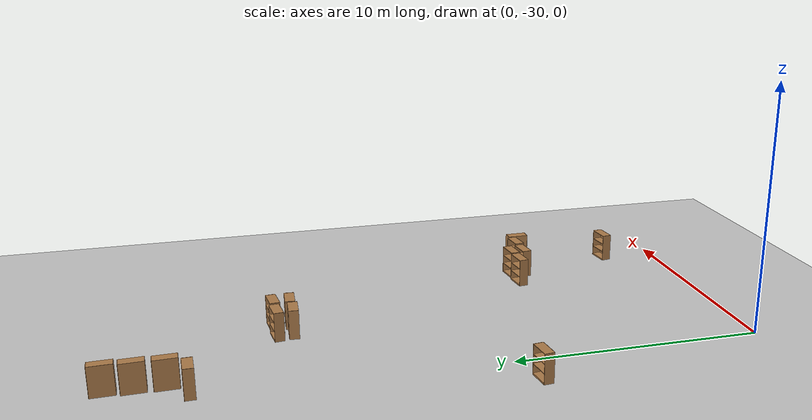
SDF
<sdf version="1.6">
 <world name="default">
  <model name="ground_plane">
   <static>1</static>
   <link name="link">
    <collision name="collision">
     <geometry><plane><normal>0 0 1</normal><size>100 100</size></plane></geometry>
     <surface>
      <contact><collide_bitmask>65535</collide_bitmask></contact>
      <friction><ode><mu>100</mu><mu2>50</mu2></ode></friction>
     </surface>
    </collision>
    <visual name="visual">
     <cast_shadows>0</cast_shadows>
     <geometry><plane><normal>0 0 1</normal><size>100 100</size></plane></geometry>
     <material>
      <script><uri>file://media/materials/scripts/gazebo.material</uri><name>Gazebo/Grey</name></script>
     </material>
    </visual>
   </link>
  </model>
  <model name="bookshelf_clone_2_clone_clone_0_clone_3_clone_0_clone_clone_1_clone_0">
   <static>1</static>
   <link name="link">
    <inertial><mass>1</mass></inertial>
    <collision name="back">
     <pose>0 0.005 0.6 0 -0 0</pose>
     <geometry><box><size>0.9 0.01 1.2</size></box></geometry>
    </collision>
    <visual name="visual1">
     <pose>0 0.005 0.6 0 -0 0</pose>
     <geometry><box><size>0.9 0.01 1.2</size></box></geometry>
     <material>
      <script><uri>file://media/materials/scripts/gazebo.material</uri><name>Gazebo/Wood</name></script>
     </material>
    </visual>
    <collision name="left_side">
     <pose>0.45 -0.195 0.6 0 -0 0</pose>
     <geometry><box><size>0.02 0.4 1.2</size></box></geometry>
    </collision>
    <visual name="visual2">
     <pose>0.45 -0.195 0.6 0 -0 0</pose>
     <geometry><box><size>0.02 0.4 1.2</size></box></geometry>
     <material>
      <script><uri>file://media/materials/scripts/gazebo.material</uri><name>Gazebo/Wood</name></script>
     </material>
    </visual>
    <collision name="right_side">
     <pose>-0.45 -0.195 0.6 0 -0 0</pose>
     <geometry><box><size>0.02 0.4 1.2</size></box></geometry>
    </collision>
    <visual name="visual3">
     <pose>-0.45 -0.195 0.6 0 -0 0</pose>
     <geometry><box><size>0.02 0.4 1.2</size></box></geometry>
     <material>
      <script><uri>file://media/materials/scripts/gazebo.material</uri><name>Gazebo/Wood</name></script>
     </material>
    </visual>
    <collision name="bottom">
     <pose>0 -0.195 0.03 0 -0 0</pose>
     <geometry><box><size>0.88 0.4 0.06</size></box></geometry>
    </collision>
    <visual name="visual4">
     <pose>0 -0.195 0.03 0 -0 0</pose>
     <geometry><box><size>0.88 0.4 0.06</size></box></geometry>
     <material>
      <script><uri>file://media/materials/scripts/gazebo.material</uri><name>Gazebo/Wood</name></script>
     </material>
    </visual>
    <collision name="top">
     <pose>0 -0.195 1.19 0 -0 0</pose>
     <geometry><box><size>0.88 0.4 0.02</size></box></geometry>
    </collision>
    <visual name="visual5">
     <pose>0 -0.195 1.19 0 -0 0</pose>
     <geometry><box><size>0.88 0.4 0.02</size></box></geometry>
     <material>
      <script><uri>file://media/materials/scripts/gazebo.material</uri><name>Gazebo/Wood</name></script>
     </material>
    </visual>
    <collision name="low_shelf">
     <pose>0 -0.195 0.43 0 -0 0</pose>
     <geometry><box><size>0.88 0.4 0.02</size></box></geometry>
    </collision>
    <visual name="visual6">
     <pose>0 -0.195 0.43 0 -0 0</pose>
     <geometry><box><size>0.88 0.4 0.02</size></box></geometry>
     <material>
      <script><uri>file://media/materials/scripts/gazebo.material</uri><name>Gazebo/Wood</name></script>
     </material>
    </visual>
    <collision name="high_shelf">
     <pose>0 -0.195 0.8 0 -0 0</pose>
     <geometry><box><size>0.88 0.4 0.02</size></box></geometry>
    </collision>
    <visual name="visual7">
     <pose>0 -0.195 0.8 0 -0 0</pose>
     <geometry><box><size>0.88 0.4 0.02</size></box></geometry>
     <material>
      <script><uri>file://media/materials/scripts/gazebo.material</uri><name>Gazebo/Wood</name></script>
     </material>
    </visual>
   </link>
   <pose>5.47575 -11.9131 0 0 0 -3.02711</pose>
  </model>
  <model name="bookshelf_clone_2_clone_clone_0_clone_3_clone_0_clone_clone_1_clone_1">
   <static>1</static>
   <link name="link">
    <inertial><mass>1</mass></inertial>
    <collision name="back">
     <pose>0 0.005 0.6 0 -0 0</pose>
     <geometry><box><size>0.9 0.01 1.2</size></box></geometry>
    </collision>
    <visual name="visual1">
     <pose>0 0.005 0.6 0 -0 0</pose>
     <geometry><box><size>0.9 0.01 1.2</size></box></geometry>
     <material>
      <script><uri>file://media/materials/scripts/gazebo.material</uri><name>Gazebo/Wood</name></script>
     </material>
    </visual>
    <collision name="left_side">
     <pose>0.45 -0.195 0.6 0 -0 0</pose>
     <geometry><box><size>0.02 0.4 1.2</size></box></geometry>
    </collision>
    <visual name="visual2">
     <pose>0.45 -0.195 0.6 0 -0 0</pose>
     <geometry><box><size>0.02 0.4 1.2</size></box></geometry>
     <material>
      <script><uri>file://media/materials/scripts/gazebo.material</uri><name>Gazebo/Wood</name></script>
     </material>
    </visual>
    <collision name="right_side">
     <pose>-0.45 -0.195 0.6 0 -0 0</pose>
     <geometry><box><size>0.02 0.4 1.2</size></box></geometry>
    </collision>
    <visual name="visual3">
     <pose>-0.45 -0.195 0.6 0 -0 0</pose>
     <geometry><box><size>0.02 0.4 1.2</size></box></geometry>
     <material>
      <script><uri>file://media/materials/scripts/gazebo.material</uri><name>Gazebo/Wood</name></script>
     </material>
    </visual>
    <collision name="bottom">
     <pose>0 -0.195 0.03 0 -0 0</pose>
     <geometry><box><size>0.88 0.4 0.06</size></box></geometry>
    </collision>
    <visual name="visual4">
     <pose>0 -0.195 0.03 0 -0 0</pose>
     <geometry><box><size>0.88 0.4 0.06</size></box></geometry>
     <material>
      <script><uri>file://media/materials/scripts/gazebo.material</uri><name>Gazebo/Wood</name></script>
     </material>
    </visual>
    <collision name="top">
     <pose>0 -0.195 1.19 0 -0 0</pose>
     <geometry><box><size>0.88 0.4 0.02</size></box></geometry>
    </collision>
    <visual name="visual5">
     <pose>0 -0.195 1.19 0 -0 0</pose>
     <geometry><box><size>0.88 0.4 0.02</size></box></geometry>
     <material>
      <script><uri>file://media/materials/scripts/gazebo.material</uri><name>Gazebo/Wood</name></script>
     </material>
    </visual>
    <collision name="low_shelf">
     <pose>0 -0.195 0.43 0 -0 0</pose>
     <geometry><box><size>0.88 0.4 0.02</size></box></geometry>
    </collision>
    <visual name="visual6">
     <pose>0 -0.195 0.43 0 -0 0</pose>
     <geometry><box><size>0.88 0.4 0.02</size></box></geometry>
     <material>
      <script><uri>file://media/materials/scripts/gazebo.material</uri><name>Gazebo/Wood</name></script>
     </material>
    </visual>
    <collision name="high_shelf">
     <pose>0 -0.195 0.8 0 -0 0</pose>
     <geometry><box><size>0.88 0.4 0.02</size></box></geometry>
    </collision>
    <visual name="visual7">
     <pose>0 -0.195 0.8 0 -0 0</pose>
     <geometry><box><size>0.88 0.4 0.02</size></box></geometry>
     <material>
      <script><uri>file://media/materials/scripts/gazebo.material</uri><name>Gazebo/Wood</name></script>
     </material>
    </visual>
   </link>
   <pose>4.44861 -11.9549 0 0 0 -3.02711</pose>
  </model>
  <model name="bookshelf_clone_2_clone_clone_0_clone_3_clone_0_clone_clone_1_clone_1_clone_clone">
   <static>1</static>
   <link name="link">
    <inertial><mass>1</mass></inertial>
    <collision name="back">
     <pose>0 0.005 0.6 0 -0 0</pose>
     <geometry><box><size>0.9 0.01 1.2</size></box></geometry>
    </collision>
    <visual name="visual1">
     <pose>0 0.005 0.6 0 -0 0</pose>
     <geometry><box><size>0.9 0.01 1.2</size></box></geometry>
     <material>
      <script><uri>file://media/materials/scripts/gazebo.material</uri><name>Gazebo/Wood</name></script>
     </material>
    </visual>
    <collision name="left_side">
     <pose>0.45 -0.195 0.6 0 -0 0</pose>
     <geometry><box><size>0.02 0.4 1.2</size></box></geometry>
    </collision>
    <visual name="visual2">
     <pose>0.45 -0.195 0.6 0 -0 0</pose>
     <geometry><box><size>0.02 0.4 1.2</size></box></geometry>
     <material>
      <script><uri>file://media/materials/scripts/gazebo.material</uri><name>Gazebo/Wood</name></script>
     </material>
    </visual>
    <collision name="right_side">
     <pose>-0.45 -0.195 0.6 0 -0 0</pose>
     <geometry><box><size>0.02 0.4 1.2</size></box></geometry>
    </collision>
    <visual name="visual3">
     <pose>-0.45 -0.195 0.6 0 -0 0</pose>
     <geometry><box><size>0.02 0.4 1.2</size></box></geometry>
     <material>
      <script><uri>file://media/materials/scripts/gazebo.material</uri><name>Gazebo/Wood</name></script>
     </material>
    </visual>
    <collision name="bottom">
     <pose>0 -0.195 0.03 0 -0 0</pose>
     <geometry><box><size>0.88 0.4 0.06</size></box></geometry>
    </collision>
    <visual name="visual4">
     <pose>0 -0.195 0.03 0 -0 0</pose>
     <geometry><box><size>0.88 0.4 0.06</size></box></geometry>
     <material>
      <script><uri>file://media/materials/scripts/gazebo.material</uri><name>Gazebo/Wood</name></script>
     </material>
    </visual>
    <collision name="top">
     <pose>0 -0.195 1.19 0 -0 0</pose>
     <geometry><box><size>0.88 0.4 0.02</size></box></geometry>
    </collision>
    <visual name="visual5">
     <pose>0 -0.195 1.19 0 -0 0</pose>
     <geometry><box><size>0.88 0.4 0.02</size></box></geometry>
     <material>
      <script><uri>file://media/materials/scripts/gazebo.material</uri><name>Gazebo/Wood</name></script>
     </material>
    </visual>
    <collision name="low_shelf">
     <pose>0 -0.195 0.43 0 -0 0</pose>
     <geometry><box><size>0.88 0.4 0.02</size></box></geometry>
    </collision>
    <visual name="visual6">
     <pose>0 -0.195 0.43 0 -0 0</pose>
     <geometry><box><size>0.88 0.4 0.02</size></box></geometry>
     <material>
      <script><uri>file://media/materials/scripts/gazebo.material</uri><name>Gazebo/Wood</name></script>
     </material>
    </visual>
    <collision name="high_shelf">
     <pose>0 -0.195 0.8 0 -0 0</pose>
     <geometry><box><size>0.88 0.4 0.02</size></box></geometry>
    </collision>
    <visual name="visual7">
     <pose>0 -0.195 0.8 0 -0 0</pose>
     <geometry><box><size>0.88 0.4 0.02</size></box></geometry>
     <material>
      <script><uri>file://media/materials/scripts/gazebo.material</uri><name>Gazebo/Wood</name></script>
     </material>
    </visual>
   </link>
   <pose>0.495356 -8.16656 0 0 -0 0.032682</pose>
  </model>
  <model name="bookshelf_clone_2_clone_clone_0_clone_3_clone_0_clone_1_clone_clone_0_clone_1_clone_1_clone_clone_0_clone_clone_clone">
   <static>1</static>
   <link name="link">
    <inertial><mass>1</mass></inertial>
    <collision name="back">
     <pose>0 0.005 0.6 0 -0 0</pose>
     <geometry><box><size>0.9 0.01 1.2</size></box></geometry>
    </collision>
    <visual name="visual1">
     <pose>0 0.005 0.6 0 -0 0</pose>
     <geometry><box><size>0.9 0.01 1.2</size></box></geometry>
     <material>
      <script><uri>file://media/materials/scripts/gazebo.material</uri><name>Gazebo/Wood</name></script>
     </material>
    </visual>
    <collision name="left_side">
     <pose>0.45 -0.195 0.6 0 -0 0</pose>
     <geometry><box><size>0.02 0.4 1.2</size></box></geometry>
    </collision>
    <visual name="visual2">
     <pose>0.45 -0.195 0.6 0 -0 0</pose>
     <geometry><box><size>0.02 0.4 1.2</size></box></geometry>
     <material>
      <script><uri>file://media/materials/scripts/gazebo.material</uri><name>Gazebo/Wood</name></script>
     </material>
    </visual>
    <collision name="right_side">
     <pose>-0.45 -0.195 0.6 0 -0 0</pose>
     <geometry><box><size>0.02 0.4 1.2</size></box></geometry>
    </collision>
    <visual name="visual3">
     <pose>-0.45 -0.195 0.6 0 -0 0</pose>
     <geometry><box><size>0.02 0.4 1.2</size></box></geometry>
     <material>
      <script><uri>file://media/materials/scripts/gazebo.material</uri><name>Gazebo/Wood</name></script>
     </material>
    </visual>
    <collision name="bottom">
     <pose>0 -0.195 0.03 0 -0 0</pose>
     <geometry><box><size>0.88 0.4 0.06</size></box></geometry>
    </collision>
    <visual name="visual4">
     <pose>0 -0.195 0.03 0 -0 0</pose>
     <geometry><box><size>0.88 0.4 0.06</size></box></geometry>
     <material>
      <script><uri>file://media/materials/scripts/gazebo.material</uri><name>Gazebo/Wood</name></script>
     </material>
    </visual>
    <collision name="top">
     <pose>0 -0.195 1.19 0 -0 0</pose>
     <geometry><box><size>0.88 0.4 0.02</size></box></geometry>
    </collision>
    <visual name="visual5">
     <pose>0 -0.195 1.19 0 -0 0</pose>
     <geometry><box><size>0.88 0.4 0.02</size></box></geometry>
     <material>
      <script><uri>file://media/materials/scripts/gazebo.material</uri><name>Gazebo/Wood</name></script>
     </material>
    </visual>
    <collision name="low_shelf">
     <pose>0 -0.195 0.43 0 -0 0</pose>
     <geometry><box><size>0.88 0.4 0.02</size></box></geometry>
    </collision>
    <visual name="visual6">
     <pose>0 -0.195 0.43 0 -0 0</pose>
     <geometry><box><size>0.88 0.4 0.02</size></box></geometry>
     <material>
      <script><uri>file://media/materials/scripts/gazebo.material</uri><name>Gazebo/Wood</name></script>
     </material>
    </visual>
    <collision name="high_shelf">
     <pose>0 -0.195 0.8 0 -0 0</pose>
     <geometry><box><size>0.88 0.4 0.02</size></box></geometry>
    </collision>
    <visual name="visual7">
     <pose>0 -0.195 0.8 0 -0 0</pose>
     <geometry><box><size>0.88 0.4 0.02</size></box></geometry>
     <material>
      <script><uri>file://media/materials/scripts/gazebo.material</uri><name>Gazebo/Wood</name></script>
     </material>
    </visual>
   </link>
   <pose>1.01754 -6.4966 0 0 -0 1.61157</pose>
  </model>
  <model name="bookshelf_clone_2_clone_clone_0_clone_3_clone_0_clone_1_clone_clone_0_clone_1_clone_1_clone_clone_0_clone_clone_clone_0">
   <static>1</static>
   <link name="link">
    <inertial><mass>1</mass></inertial>
    <collision name="back">
     <pose>0 0.005 0.6 0 -0 0</pose>
     <geometry><box><size>0.9 0.01 1.2</size></box></geometry>
    </collision>
    <visual name="visual1">
     <pose>0 0.005 0.6 0 -0 0</pose>
     <geometry><box><size>0.9 0.01 1.2</size></box></geometry>
     <material>
      <script><uri>file://media/materials/scripts/gazebo.material</uri><name>Gazebo/Wood</name></script>
     </material>
    </visual>
    <collision name="left_side">
     <pose>0.45 -0.195 0.6 0 -0 0</pose>
     <geometry><box><size>0.02 0.4 1.2</size></box></geometry>
    </collision>
    <visual name="visual2">
     <pose>0.45 -0.195 0.6 0 -0 0</pose>
     <geometry><box><size>0.02 0.4 1.2</size></box></geometry>
     <material>
      <script><uri>file://media/materials/scripts/gazebo.material</uri><name>Gazebo/Wood</name></script>
     </material>
    </visual>
    <collision name="right_side">
     <pose>-0.45 -0.195 0.6 0 -0 0</pose>
     <geometry><box><size>0.02 0.4 1.2</size></box></geometry>
    </collision>
    <visual name="visual3">
     <pose>-0.45 -0.195 0.6 0 -0 0</pose>
     <geometry><box><size>0.02 0.4 1.2</size></box></geometry>
     <material>
      <script><uri>file://media/materials/scripts/gazebo.material</uri><name>Gazebo/Wood</name></script>
     </material>
    </visual>
    <collision name="bottom">
     <pose>0 -0.195 0.03 0 -0 0</pose>
     <geometry><box><size>0.88 0.4 0.06</size></box></geometry>
    </collision>
    <visual name="visual4">
     <pose>0 -0.195 0.03 0 -0 0</pose>
     <geometry><box><size>0.88 0.4 0.06</size></box></geometry>
     <material>
      <script><uri>file://media/materials/scripts/gazebo.material</uri><name>Gazebo/Wood</name></script>
     </material>
    </visual>
    <collision name="top">
     <pose>0 -0.195 1.19 0 -0 0</pose>
     <geometry><box><size>0.88 0.4 0.02</size></box></geometry>
    </collision>
    <visual name="visual5">
     <pose>0 -0.195 1.19 0 -0 0</pose>
     <geometry><box><size>0.88 0.4 0.02</size></box></geometry>
     <material>
      <script><uri>file://media/materials/scripts/gazebo.material</uri><name>Gazebo/Wood</name></script>
     </material>
    </visual>
    <collision name="low_shelf">
     <pose>0 -0.195 0.43 0 -0 0</pose>
     <geometry><box><size>0.88 0.4 0.02</size></box></geometry>
    </collision>
    <visual name="visual6">
     <pose>0 -0.195 0.43 0 -0 0</pose>
     <geometry><box><size>0.88 0.4 0.02</size></box></geometry>
     <material>
      <script><uri>file://media/materials/scripts/gazebo.material</uri><name>Gazebo/Wood</name></script>
     </material>
    </visual>
    <collision name="high_shelf">
     <pose>0 -0.195 0.8 0 -0 0</pose>
     <geometry><box><size>0.88 0.4 0.02</size></box></geometry>
    </collision>
    <visual name="visual7">
     <pose>0 -0.195 0.8 0 -0 0</pose>
     <geometry><box><size>0.88 0.4 0.02</size></box></geometry>
     <material>
      <script><uri>file://media/materials/scripts/gazebo.material</uri><name>Gazebo/Wood</name></script>
     </material>
    </visual>
   </link>
   <pose>1.00167 -7.61544 0 0 -0 1.61157</pose>
  </model>
  <model name="bookshelf_clone_2_clone_clone_0_clone_3_clone_0_clone_1_clone_clone_0_clone_1_clone_1_clone_clone_0_clone_clone_clone_clone">
   <static>1</static>
   <link name="link">
    <inertial><mass>1</mass></inertial>
    <collision name="back">
     <pose>0 0.005 0.6 0 -0 0</pose>
     <geometry><box><size>0.9 0.01 1.2</size></box></geometry>
    </collision>
    <visual name="visual1">
     <pose>0 0.005 0.6 0 -0 0</pose>
     <geometry><box><size>0.9 0.01 1.2</size></box></geometry>
     <material>
      <script><uri>file://media/materials/scripts/gazebo.material</uri><name>Gazebo/Wood</name></script>
     </material>
    </visual>
    <collision name="left_side">
     <pose>0.45 -0.195 0.6 0 -0 0</pose>
     <geometry><box><size>0.02 0.4 1.2</size></box></geometry>
    </collision>
    <visual name="visual2">
     <pose>0.45 -0.195 0.6 0 -0 0</pose>
     <geometry><box><size>0.02 0.4 1.2</size></box></geometry>
     <material>
      <script><uri>file://media/materials/scripts/gazebo.material</uri><name>Gazebo/Wood</name></script>
     </material>
    </visual>
    <collision name="right_side">
     <pose>-0.45 -0.195 0.6 0 -0 0</pose>
     <geometry><box><size>0.02 0.4 1.2</size></box></geometry>
    </collision>
    <visual name="visual3">
     <pose>-0.45 -0.195 0.6 0 -0 0</pose>
     <geometry><box><size>0.02 0.4 1.2</size></box></geometry>
     <material>
      <script><uri>file://media/materials/scripts/gazebo.material</uri><name>Gazebo/Wood</name></script>
     </material>
    </visual>
    <collision name="bottom">
     <pose>0 -0.195 0.03 0 -0 0</pose>
     <geometry><box><size>0.88 0.4 0.06</size></box></geometry>
    </collision>
    <visual name="visual4">
     <pose>0 -0.195 0.03 0 -0 0</pose>
     <geometry><box><size>0.88 0.4 0.06</size></box></geometry>
     <material>
      <script><uri>file://media/materials/scripts/gazebo.material</uri><name>Gazebo/Wood</name></script>
     </material>
    </visual>
    <collision name="top">
     <pose>0 -0.195 1.19 0 -0 0</pose>
     <geometry><box><size>0.88 0.4 0.02</size></box></geometry>
    </collision>
    <visual name="visual5">
     <pose>0 -0.195 1.19 0 -0 0</pose>
     <geometry><box><size>0.88 0.4 0.02</size></box></geometry>
     <material>
      <script><uri>file://media/materials/scripts/gazebo.material</uri><name>Gazebo/Wood</name></script>
     </material>
    </visual>
    <collision name="low_shelf">
     <pose>0 -0.195 0.43 0 -0 0</pose>
     <geometry><box><size>0.88 0.4 0.02</size></box></geometry>
    </collision>
    <visual name="visual6">
     <pose>0 -0.195 0.43 0 -0 0</pose>
     <geometry><box><size>0.88 0.4 0.02</size></box></geometry>
     <material>
      <script><uri>file://media/materials/scripts/gazebo.material</uri><name>Gazebo/Wood</name></script>
     </material>
    </visual>
    <collision name="high_shelf">
     <pose>0 -0.195 0.8 0 -0 0</pose>
     <geometry><box><size>0.88 0.4 0.02</size></box></geometry>
    </collision>
    <visual name="visual7">
     <pose>0 -0.195 0.8 0 -0 0</pose>
     <geometry><box><size>0.88 0.4 0.02</size></box></geometry>
     <material>
      <script><uri>file://media/materials/scripts/gazebo.material</uri><name>Gazebo/Wood</name></script>
     </material>
    </visual>
   </link>
   <pose>1.07441 -5.45897 0 0 -0 1.61157</pose>
  </model>
  <model name="bookshelf_clone_2_clone_clone_0_clone_3_clone_0_clone_clone_1_clone_3_clone_clone_0">
   <static>1</static>
   <link name="link">
    <inertial><mass>1</mass></inertial>
    <collision name="back">
     <pose>0 0.005 0.6 0 -0 0</pose>
     <geometry><box><size>0.9 0.01 1.2</size></box></geometry>
    </collision>
    <visual name="visual1">
     <pose>0 0.005 0.6 0 -0 0</pose>
     <geometry><box><size>0.9 0.01 1.2</size></box></geometry>
     <material>
      <script><uri>file://media/materials/scripts/gazebo.material</uri><name>Gazebo/Wood</name></script>
     </material>
    </visual>
    <collision name="left_side">
     <pose>0.45 -0.195 0.6 0 -0 0</pose>
     <geometry><box><size>0.02 0.4 1.2</size></box></geometry>
    </collision>
    <visual name="visual2">
     <pose>0.45 -0.195 0.6 0 -0 0</pose>
     <geometry><box><size>0.02 0.4 1.2</size></box></geometry>
     <material>
      <script><uri>file://media/materials/scripts/gazebo.material</uri><name>Gazebo/Wood</name></script>
     </material>
    </visual>
    <collision name="right_side">
     <pose>-0.45 -0.195 0.6 0 -0 0</pose>
     <geometry><box><size>0.02 0.4 1.2</size></box></geometry>
    </collision>
    <visual name="visual3">
     <pose>-0.45 -0.195 0.6 0 -0 0</pose>
     <geometry><box><size>0.02 0.4 1.2</size></box></geometry>
     <material>
      <script><uri>file://media/materials/scripts/gazebo.material</uri><name>Gazebo/Wood</name></script>
     </material>
    </visual>
    <collision name="bottom">
     <pose>0 -0.195 0.03 0 -0 0</pose>
     <geometry><box><size>0.88 0.4 0.06</size></box></geometry>
    </collision>
    <visual name="visual4">
     <pose>0 -0.195 0.03 0 -0 0</pose>
     <geometry><box><size>0.88 0.4 0.06</size></box></geometry>
     <material>
      <script><uri>file://media/materials/scripts/gazebo.material</uri><name>Gazebo/Wood</name></script>
     </material>
    </visual>
    <collision name="top">
     <pose>0 -0.195 1.19 0 -0 0</pose>
     <geometry><box><size>0.88 0.4 0.02</size></box></geometry>
    </collision>
    <visual name="visual5">
     <pose>0 -0.195 1.19 0 -0 0</pose>
     <geometry><box><size>0.88 0.4 0.02</size></box></geometry>
     <material>
      <script><uri>file://media/materials/scripts/gazebo.material</uri><name>Gazebo/Wood</name></script>
     </material>
    </visual>
    <collision name="low_shelf">
     <pose>0 -0.195 0.43 0 -0 0</pose>
     <geometry><box><size>0.88 0.4 0.02</size></box></geometry>
    </collision>
    <visual name="visual6">
     <pose>0 -0.195 0.43 0 -0 0</pose>
     <geometry><box><size>0.88 0.4 0.02</size></box></geometry>
     <material>
      <script><uri>file://media/materials/scripts/gazebo.material</uri><name>Gazebo/Wood</name></script>
     </material>
    </visual>
    <collision name="high_shelf">
     <pose>0 -0.195 0.8 0 -0 0</pose>
     <geometry><box><size>0.88 0.4 0.02</size></box></geometry>
    </collision>
    <visual name="visual7">
     <pose>0 -0.195 0.8 0 -0 0</pose>
     <geometry><box><size>0.88 0.4 0.02</size></box></geometry>
     <material>
      <script><uri>file://media/materials/scripts/gazebo.material</uri><name>Gazebo/Wood</name></script>
     </material>
    </visual>
   </link>
   <pose>9.60047 -27.7951 0 0 0 -3.02711</pose>
  </model>
  <model name="bookshelf_clone_2_clone_clone_0_clone_3_clone_0_clone_clone_1_clone_1_clone">
   <static>1</static>
   <link name="link">
    <inertial><mass>1</mass></inertial>
    <collision name="back">
     <pose>0 0.005 0.6 0 -0 0</pose>
     <geometry><box><size>0.9 0.01 1.2</size></box></geometry>
    </collision>
    <visual name="visual1">
     <pose>0 0.005 0.6 0 -0 0</pose>
     <geometry><box><size>0.9 0.01 1.2</size></box></geometry>
     <material>
      <script><uri>file://media/materials/scripts/gazebo.material</uri><name>Gazebo/Wood</name></script>
     </material>
    </visual>
    <collision name="left_side">
     <pose>0.45 -0.195 0.6 0 -0 0</pose>
     <geometry><box><size>0.02 0.4 1.2</size></box></geometry>
    </collision>
    <visual name="visual2">
     <pose>0.45 -0.195 0.6 0 -0 0</pose>
     <geometry><box><size>0.02 0.4 1.2</size></box></geometry>
     <material>
      <script><uri>file://media/materials/scripts/gazebo.material</uri><name>Gazebo/Wood</name></script>
     </material>
    </visual>
    <collision name="right_side">
     <pose>-0.45 -0.195 0.6 0 -0 0</pose>
     <geometry><box><size>0.02 0.4 1.2</size></box></geometry>
    </collision>
    <visual name="visual3">
     <pose>-0.45 -0.195 0.6 0 -0 0</pose>
     <geometry><box><size>0.02 0.4 1.2</size></box></geometry>
     <material>
      <script><uri>file://media/materials/scripts/gazebo.material</uri><name>Gazebo/Wood</name></script>
     </material>
    </visual>
    <collision name="bottom">
     <pose>0 -0.195 0.03 0 -0 0</pose>
     <geometry><box><size>0.88 0.4 0.06</size></box></geometry>
    </collision>
    <visual name="visual4">
     <pose>0 -0.195 0.03 0 -0 0</pose>
     <geometry><box><size>0.88 0.4 0.06</size></box></geometry>
     <material>
      <script><uri>file://media/materials/scripts/gazebo.material</uri><name>Gazebo/Wood</name></script>
     </material>
    </visual>
    <collision name="top">
     <pose>0 -0.195 1.19 0 -0 0</pose>
     <geometry><box><size>0.88 0.4 0.02</size></box></geometry>
    </collision>
    <visual name="visual5">
     <pose>0 -0.195 1.19 0 -0 0</pose>
     <geometry><box><size>0.88 0.4 0.02</size></box></geometry>
     <material>
      <script><uri>file://media/materials/scripts/gazebo.material</uri><name>Gazebo/Wood</name></script>
     </material>
    </visual>
    <collision name="low_shelf">
     <pose>0 -0.195 0.43 0 -0 0</pose>
     <geometry><box><size>0.88 0.4 0.02</size></box></geometry>
    </collision>
    <visual name="visual6">
     <pose>0 -0.195 0.43 0 -0 0</pose>
     <geometry><box><size>0.88 0.4 0.02</size></box></geometry>
     <material>
      <script><uri>file://media/materials/scripts/gazebo.material</uri><name>Gazebo/Wood</name></script>
     </material>
    </visual>
    <collision name="high_shelf">
     <pose>0 -0.195 0.8 0 -0 0</pose>
     <geometry><box><size>0.88 0.4 0.02</size></box></geometry>
    </collision>
    <visual name="visual7">
     <pose>0 -0.195 0.8 0 -0 0</pose>
     <geometry><box><size>0.88 0.4 0.02</size></box></geometry>
     <material>
      <script><uri>file://media/materials/scripts/gazebo.material</uri><name>Gazebo/Wood</name></script>
     </material>
    </visual>
   </link>
   <pose>-1.49522 -20.763 0 0 0 -3.02711</pose>
  </model>
  <model name="bookshelf_clone_2_clone_clone_0_clone_3_clone_0_clone_1_clone_clone_clone_clone_clone_clone">
   <static>1</static>
   <link name="link">
    <inertial><mass>1</mass></inertial>
    <collision name="back">
     <pose>0 0.005 0.6 0 -0 0</pose>
     <geometry><box><size>0.9 0.01 1.2</size></box></geometry>
    </collision>
    <visual name="visual1">
     <pose>0 0.005 0.6 0 -0 0</pose>
     <geometry><box><size>0.9 0.01 1.2</size></box></geometry>
     <material>
      <script><uri>file://media/materials/scripts/gazebo.material</uri><name>Gazebo/Wood</name></script>
     </material>
    </visual>
    <collision name="left_side">
     <pose>0.45 -0.195 0.6 0 -0 0</pose>
     <geometry><box><size>0.02 0.4 1.2</size></box></geometry>
    </collision>
    <visual name="visual2">
     <pose>0.45 -0.195 0.6 0 -0 0</pose>
     <geometry><box><size>0.02 0.4 1.2</size></box></geometry>
     <material>
      <script><uri>file://media/materials/scripts/gazebo.material</uri><name>Gazebo/Wood</name></script>
     </material>
    </visual>
    <collision name="right_side">
     <pose>-0.45 -0.195 0.6 0 -0 0</pose>
     <geometry><box><size>0.02 0.4 1.2</size></box></geometry>
    </collision>
    <visual name="visual3">
     <pose>-0.45 -0.195 0.6 0 -0 0</pose>
     <geometry><box><size>0.02 0.4 1.2</size></box></geometry>
     <material>
      <script><uri>file://media/materials/scripts/gazebo.material</uri><name>Gazebo/Wood</name></script>
     </material>
    </visual>
    <collision name="bottom">
     <pose>0 -0.195 0.03 0 -0 0</pose>
     <geometry><box><size>0.88 0.4 0.06</size></box></geometry>
    </collision>
    <visual name="visual4">
     <pose>0 -0.195 0.03 0 -0 0</pose>
     <geometry><box><size>0.88 0.4 0.06</size></box></geometry>
     <material>
      <script><uri>file://media/materials/scripts/gazebo.material</uri><name>Gazebo/Wood</name></script>
     </material>
    </visual>
    <collision name="top">
     <pose>0 -0.195 1.19 0 -0 0</pose>
     <geometry><box><size>0.88 0.4 0.02</size></box></geometry>
    </collision>
    <visual name="visual5">
     <pose>0 -0.195 1.19 0 -0 0</pose>
     <geometry><box><size>0.88 0.4 0.02</size></box></geometry>
     <material>
      <script><uri>file://media/materials/scripts/gazebo.material</uri><name>Gazebo/Wood</name></script>
     </material>
    </visual>
    <collision name="low_shelf">
     <pose>0 -0.195 0.43 0 -0 0</pose>
     <geometry><box><size>0.88 0.4 0.02</size></box></geometry>
    </collision>
    <visual name="visual6">
     <pose>0 -0.195 0.43 0 -0 0</pose>
     <geometry><box><size>0.88 0.4 0.02</size></box></geometry>
     <material>
      <script><uri>file://media/materials/scripts/gazebo.material</uri><name>Gazebo/Wood</name></script>
     </material>
    </visual>
    <collision name="high_shelf">
     <pose>0 -0.195 0.8 0 -0 0</pose>
     <geometry><box><size>0.88 0.4 0.02</size></box></geometry>
    </collision>
    <visual name="visual7">
     <pose>0 -0.195 0.8 0 -0 0</pose>
     <geometry><box><size>0.88 0.4 0.02</size></box></geometry>
     <material>
      <script><uri>file://media/materials/scripts/gazebo.material</uri><name>Gazebo/Wood</name></script>
     </material>
    </visual>
   </link>
   <pose>10.1371 -23.5861 0 0 -0 1.57896</pose>
  </model>
  <model name="bookshelf_clone_2_clone_clone_0_clone_3_clone_0_clone_clone_1_clone_3_clone_clone_1">
   <static>1</static>
   <link name="link">
    <inertial><mass>1</mass></inertial>
    <collision name="back">
     <pose>0 0.005 0.6 0 -0 0</pose>
     <geometry><box><size>0.9 0.01 1.2</size></box></geometry>
    </collision>
    <visual name="visual1">
     <pose>0 0.005 0.6 0 -0 0</pose>
     <geometry><box><size>0.9 0.01 1.2</size></box></geometry>
     <material>
      <script><uri>file://media/materials/scripts/gazebo.material</uri><name>Gazebo/Wood</name></script>
     </material>
    </visual>
    <collision name="left_side">
     <pose>0.45 -0.195 0.6 0 -0 0</pose>
     <geometry><box><size>0.02 0.4 1.2</size></box></geometry>
    </collision>
    <visual name="visual2">
     <pose>0.45 -0.195 0.6 0 -0 0</pose>
     <geometry><box><size>0.02 0.4 1.2</size></box></geometry>
     <material>
      <script><uri>file://media/materials/scripts/gazebo.material</uri><name>Gazebo/Wood</name></script>
     </material>
    </visual>
    <collision name="right_side">
     <pose>-0.45 -0.195 0.6 0 -0 0</pose>
     <geometry><box><size>0.02 0.4 1.2</size></box></geometry>
    </collision>
    <visual name="visual3">
     <pose>-0.45 -0.195 0.6 0 -0 0</pose>
     <geometry><box><size>0.02 0.4 1.2</size></box></geometry>
     <material>
      <script><uri>file://media/materials/scripts/gazebo.material</uri><name>Gazebo/Wood</name></script>
     </material>
    </visual>
    <collision name="bottom">
     <pose>0 -0.195 0.03 0 -0 0</pose>
     <geometry><box><size>0.88 0.4 0.06</size></box></geometry>
    </collision>
    <visual name="visual4">
     <pose>0 -0.195 0.03 0 -0 0</pose>
     <geometry><box><size>0.88 0.4 0.06</size></box></geometry>
     <material>
      <script><uri>file://media/materials/scripts/gazebo.material</uri><name>Gazebo/Wood</name></script>
     </material>
    </visual>
    <collision name="top">
     <pose>0 -0.195 1.19 0 -0 0</pose>
     <geometry><box><size>0.88 0.4 0.02</size></box></geometry>
    </collision>
    <visual name="visual5">
     <pose>0 -0.195 1.19 0 -0 0</pose>
     <geometry><box><size>0.88 0.4 0.02</size></box></geometry>
     <material>
      <script><uri>file://media/materials/scripts/gazebo.material</uri><name>Gazebo/Wood</name></script>
     </material>
    </visual>
    <collision name="low_shelf">
     <pose>0 -0.195 0.43 0 -0 0</pose>
     <geometry><box><size>0.88 0.4 0.02</size></box></geometry>
    </collision>
    <visual name="visual6">
     <pose>0 -0.195 0.43 0 -0 0</pose>
     <geometry><box><size>0.88 0.4 0.02</size></box></geometry>
     <material>
      <script><uri>file://media/materials/scripts/gazebo.material</uri><name>Gazebo/Wood</name></script>
     </material>
    </visual>
    <collision name="high_shelf">
     <pose>0 -0.195 0.8 0 -0 0</pose>
     <geometry><box><size>0.88 0.4 0.02</size></box></geometry>
    </collision>
    <visual name="visual7">
     <pose>0 -0.195 0.8 0 -0 0</pose>
     <geometry><box><size>0.88 0.4 0.02</size></box></geometry>
     <material>
      <script><uri>file://media/materials/scripts/gazebo.material</uri><name>Gazebo/Wood</name></script>
     </material>
    </visual>
   </link>
   <pose>9.6262 -23.4805 0 0 0 -3.02711</pose>
  </model>
  <model name="bookshelf_clone_2_clone_clone_0_clone_3_clone_0_clone_clone_1_clone_3_clone_clone_2">
   <static>1</static>
   <link name="link">
    <inertial><mass>1</mass></inertial>
    <collision name="back">
     <pose>0 0.005 0.6 0 -0 0</pose>
     <geometry><box><size>0.9 0.01 1.2</size></box></geometry>
    </collision>
    <visual name="visual1">
     <pose>0 0.005 0.6 0 -0 0</pose>
     <geometry><box><size>0.9 0.01 1.2</size></box></geometry>
     <material>
      <script><uri>file://media/materials/scripts/gazebo.material</uri><name>Gazebo/Wood</name></script>
     </material>
    </visual>
    <collision name="left_side">
     <pose>0.45 -0.195 0.6 0 -0 0</pose>
     <geometry><box><size>0.02 0.4 1.2</size></box></geometry>
    </collision>
    <visual name="visual2">
     <pose>0.45 -0.195 0.6 0 -0 0</pose>
     <geometry><box><size>0.02 0.4 1.2</size></box></geometry>
     <material>
      <script><uri>file://media/materials/scripts/gazebo.material</uri><name>Gazebo/Wood</name></script>
     </material>
    </visual>
    <collision name="right_side">
     <pose>-0.45 -0.195 0.6 0 -0 0</pose>
     <geometry><box><size>0.02 0.4 1.2</size></box></geometry>
    </collision>
    <visual name="visual3">
     <pose>-0.45 -0.195 0.6 0 -0 0</pose>
     <geometry><box><size>0.02 0.4 1.2</size></box></geometry>
     <material>
      <script><uri>file://media/materials/scripts/gazebo.material</uri><name>Gazebo/Wood</name></script>
     </material>
    </visual>
    <collision name="bottom">
     <pose>0 -0.195 0.03 0 -0 0</pose>
     <geometry><box><size>0.88 0.4 0.06</size></box></geometry>
    </collision>
    <visual name="visual4">
     <pose>0 -0.195 0.03 0 -0 0</pose>
     <geometry><box><size>0.88 0.4 0.06</size></box></geometry>
     <material>
      <script><uri>file://media/materials/scripts/gazebo.material</uri><name>Gazebo/Wood</name></script>
     </material>
    </visual>
    <collision name="top">
     <pose>0 -0.195 1.19 0 -0 0</pose>
     <geometry><box><size>0.88 0.4 0.02</size></box></geometry>
    </collision>
    <visual name="visual5">
     <pose>0 -0.195 1.19 0 -0 0</pose>
     <geometry><box><size>0.88 0.4 0.02</size></box></geometry>
     <material>
      <script><uri>file://media/materials/scripts/gazebo.material</uri><name>Gazebo/Wood</name></script>
     </material>
    </visual>
    <collision name="low_shelf">
     <pose>0 -0.195 0.43 0 -0 0</pose>
     <geometry><box><size>0.88 0.4 0.02</size></box></geometry>
    </collision>
    <visual name="visual6">
     <pose>0 -0.195 0.43 0 -0 0</pose>
     <geometry><box><size>0.88 0.4 0.02</size></box></geometry>
     <material>
      <script><uri>file://media/materials/scripts/gazebo.material</uri><name>Gazebo/Wood</name></script>
     </material>
    </visual>
    <collision name="high_shelf">
     <pose>0 -0.195 0.8 0 -0 0</pose>
     <geometry><box><size>0.88 0.4 0.02</size></box></geometry>
    </collision>
    <visual name="visual7">
     <pose>0 -0.195 0.8 0 -0 0</pose>
     <geometry><box><size>0.88 0.4 0.02</size></box></geometry>
     <material>
      <script><uri>file://media/materials/scripts/gazebo.material</uri><name>Gazebo/Wood</name></script>
     </material>
    </visual>
   </link>
   <pose>8.56552 -23.4715 0 0 0 -3.02711</pose>
  </model>
  <model name="bookshelf_clone_2_clone_clone_0_clone_3_clone_0_clone_clone_1_clone_3_clone_clone_3">
   <static>1</static>
   <link name="link">
    <inertial><mass>1</mass></inertial>
    <collision name="back">
     <pose>0 0.005 0.6 0 -0 0</pose>
     <geometry><box><size>0.9 0.01 1.2</size></box></geometry>
    </collision>
    <visual name="visual1">
     <pose>0 0.005 0.6 0 -0 0</pose>
     <geometry><box><size>0.9 0.01 1.2</size></box></geometry>
     <material>
      <script><uri>file://media/materials/scripts/gazebo.material</uri><name>Gazebo/Wood</name></script>
     </material>
    </visual>
    <collision name="left_side">
     <pose>0.45 -0.195 0.6 0 -0 0</pose>
     <geometry><box><size>0.02 0.4 1.2</size></box></geometry>
    </collision>
    <visual name="visual2">
     <pose>0.45 -0.195 0.6 0 -0 0</pose>
     <geometry><box><size>0.02 0.4 1.2</size></box></geometry>
     <material>
      <script><uri>file://media/materials/scripts/gazebo.material</uri><name>Gazebo/Wood</name></script>
     </material>
    </visual>
    <collision name="right_side">
     <pose>-0.45 -0.195 0.6 0 -0 0</pose>
     <geometry><box><size>0.02 0.4 1.2</size></box></geometry>
    </collision>
    <visual name="visual3">
     <pose>-0.45 -0.195 0.6 0 -0 0</pose>
     <geometry><box><size>0.02 0.4 1.2</size></box></geometry>
     <material>
      <script><uri>file://media/materials/scripts/gazebo.material</uri><name>Gazebo/Wood</name></script>
     </material>
    </visual>
    <collision name="bottom">
     <pose>0 -0.195 0.03 0 -0 0</pose>
     <geometry><box><size>0.88 0.4 0.06</size></box></geometry>
    </collision>
    <visual name="visual4">
     <pose>0 -0.195 0.03 0 -0 0</pose>
     <geometry><box><size>0.88 0.4 0.06</size></box></geometry>
     <material>
      <script><uri>file://media/materials/scripts/gazebo.material</uri><name>Gazebo/Wood</name></script>
     </material>
    </visual>
    <collision name="top">
     <pose>0 -0.195 1.19 0 -0 0</pose>
     <geometry><box><size>0.88 0.4 0.02</size></box></geometry>
    </collision>
    <visual name="visual5">
     <pose>0 -0.195 1.19 0 -0 0</pose>
     <geometry><box><size>0.88 0.4 0.02</size></box></geometry>
     <material>
      <script><uri>file://media/materials/scripts/gazebo.material</uri><name>Gazebo/Wood</name></script>
     </material>
    </visual>
    <collision name="low_shelf">
     <pose>0 -0.195 0.43 0 -0 0</pose>
     <geometry><box><size>0.88 0.4 0.02</size></box></geometry>
    </collision>
    <visual name="visual6">
     <pose>0 -0.195 0.43 0 -0 0</pose>
     <geometry><box><size>0.88 0.4 0.02</size></box></geometry>
     <material>
      <script><uri>file://media/materials/scripts/gazebo.material</uri><name>Gazebo/Wood</name></script>
     </material>
    </visual>
    <collision name="high_shelf">
     <pose>0 -0.195 0.8 0 -0 0</pose>
     <geometry><box><size>0.88 0.4 0.02</size></box></geometry>
    </collision>
    <visual name="visual7">
     <pose>0 -0.195 0.8 0 -0 0</pose>
     <geometry><box><size>0.88 0.4 0.02</size></box></geometry>
     <material>
      <script><uri>file://media/materials/scripts/gazebo.material</uri><name>Gazebo/Wood</name></script>
     </material>
    </visual>
   </link>
   <pose>8.50951 -22.9076 0 0 0 -3.02711</pose>
  </model>
  <model name="bookshelf_clone_2_clone_clone_0_clone_3_clone_0_clone_clone_1_clone_3_clone_clone_4">
   <static>1</static>
   <link name="link">
    <inertial><mass>1</mass></inertial>
    <collision name="back">
     <pose>0 0.005 0.6 0 -0 0</pose>
     <geometry><box><size>0.9 0.01 1.2</size></box></geometry>
    </collision>
    <visual name="visual1">
     <pose>0 0.005 0.6 0 -0 0</pose>
     <geometry><box><size>0.9 0.01 1.2</size></box></geometry>
     <material>
      <script><uri>file://media/materials/scripts/gazebo.material</uri><name>Gazebo/Wood</name></script>
     </material>
    </visual>
    <collision name="left_side">
     <pose>0.45 -0.195 0.6 0 -0 0</pose>
     <geometry><box><size>0.02 0.4 1.2</size></box></geometry>
    </collision>
    <visual name="visual2">
     <pose>0.45 -0.195 0.6 0 -0 0</pose>
     <geometry><box><size>0.02 0.4 1.2</size></box></geometry>
     <material>
      <script><uri>file://media/materials/scripts/gazebo.material</uri><name>Gazebo/Wood</name></script>
     </material>
    </visual>
    <collision name="right_side">
     <pose>-0.45 -0.195 0.6 0 -0 0</pose>
     <geometry><box><size>0.02 0.4 1.2</size></box></geometry>
    </collision>
    <visual name="visual3">
     <pose>-0.45 -0.195 0.6 0 -0 0</pose>
     <geometry><box><size>0.02 0.4 1.2</size></box></geometry>
     <material>
      <script><uri>file://media/materials/scripts/gazebo.material</uri><name>Gazebo/Wood</name></script>
     </material>
    </visual>
    <collision name="bottom">
     <pose>0 -0.195 0.03 0 -0 0</pose>
     <geometry><box><size>0.88 0.4 0.06</size></box></geometry>
    </collision>
    <visual name="visual4">
     <pose>0 -0.195 0.03 0 -0 0</pose>
     <geometry><box><size>0.88 0.4 0.06</size></box></geometry>
     <material>
      <script><uri>file://media/materials/scripts/gazebo.material</uri><name>Gazebo/Wood</name></script>
     </material>
    </visual>
    <collision name="top">
     <pose>0 -0.195 1.19 0 -0 0</pose>
     <geometry><box><size>0.88 0.4 0.02</size></box></geometry>
    </collision>
    <visual name="visual5">
     <pose>0 -0.195 1.19 0 -0 0</pose>
     <geometry><box><size>0.88 0.4 0.02</size></box></geometry>
     <material>
      <script><uri>file://media/materials/scripts/gazebo.material</uri><name>Gazebo/Wood</name></script>
     </material>
    </visual>
    <collision name="low_shelf">
     <pose>0 -0.195 0.43 0 -0 0</pose>
     <geometry><box><size>0.88 0.4 0.02</size></box></geometry>
    </collision>
    <visual name="visual6">
     <pose>0 -0.195 0.43 0 -0 0</pose>
     <geometry><box><size>0.88 0.4 0.02</size></box></geometry>
     <material>
      <script><uri>file://media/materials/scripts/gazebo.material</uri><name>Gazebo/Wood</name></script>
     </material>
    </visual>
    <collision name="high_shelf">
     <pose>0 -0.195 0.8 0 -0 0</pose>
     <geometry><box><size>0.88 0.4 0.02</size></box></geometry>
    </collision>
    <visual name="visual7">
     <pose>0 -0.195 0.8 0 -0 0</pose>
     <geometry><box><size>0.88 0.4 0.02</size></box></geometry>
     <material>
      <script><uri>file://media/materials/scripts/gazebo.material</uri><name>Gazebo/Wood</name></script>
     </material>
    </visual>
   </link>
   <pose>7.50279 -22.9517 0 0 0 -3.02711</pose>
  </model>
  <model name="bookshelf_clone_2_clone_clone_0_clone_3_clone_0_clone_clone_1_clone_0_clone">
   <static>1</static>
   <link name="link">
    <inertial><mass>1</mass></inertial>
    <collision name="back">
     <pose>0 0.005 0.6 0 -0 0</pose>
     <geometry><box><size>0.9 0.01 1.2</size></box></geometry>
    </collision>
    <visual name="visual1">
     <pose>0 0.005 0.6 0 -0 0</pose>
     <geometry><box><size>0.9 0.01 1.2</size></box></geometry>
     <material>
      <script><uri>file://media/materials/scripts/gazebo.material</uri><name>Gazebo/Wood</name></script>
     </material>
    </visual>
    <collision name="left_side">
     <pose>0.45 -0.195 0.6 0 -0 0</pose>
     <geometry><box><size>0.02 0.4 1.2</size></box></geometry>
    </collision>
    <visual name="visual2">
     <pose>0.45 -0.195 0.6 0 -0 0</pose>
     <geometry><box><size>0.02 0.4 1.2</size></box></geometry>
     <material>
      <script><uri>file://media/materials/scripts/gazebo.material</uri><name>Gazebo/Wood</name></script>
     </material>
    </visual>
    <collision name="right_side">
     <pose>-0.45 -0.195 0.6 0 -0 0</pose>
     <geometry><box><size>0.02 0.4 1.2</size></box></geometry>
    </collision>
    <visual name="visual3">
     <pose>-0.45 -0.195 0.6 0 -0 0</pose>
     <geometry><box><size>0.02 0.4 1.2</size></box></geometry>
     <material>
      <script><uri>file://media/materials/scripts/gazebo.material</uri><name>Gazebo/Wood</name></script>
     </material>
    </visual>
    <collision name="bottom">
     <pose>0 -0.195 0.03 0 -0 0</pose>
     <geometry><box><size>0.88 0.4 0.06</size></box></geometry>
    </collision>
    <visual name="visual4">
     <pose>0 -0.195 0.03 0 -0 0</pose>
     <geometry><box><size>0.88 0.4 0.06</size></box></geometry>
     <material>
      <script><uri>file://media/materials/scripts/gazebo.material</uri><name>Gazebo/Wood</name></script>
     </material>
    </visual>
    <collision name="top">
     <pose>0 -0.195 1.19 0 -0 0</pose>
     <geometry><box><size>0.88 0.4 0.02</size></box></geometry>
    </collision>
    <visual name="visual5">
     <pose>0 -0.195 1.19 0 -0 0</pose>
     <geometry><box><size>0.88 0.4 0.02</size></box></geometry>
     <material>
      <script><uri>file://media/materials/scripts/gazebo.material</uri><name>Gazebo/Wood</name></script>
     </material>
    </visual>
    <collision name="low_shelf">
     <pose>0 -0.195 0.43 0 -0 0</pose>
     <geometry><box><size>0.88 0.4 0.02</size></box></geometry>
    </collision>
    <visual name="visual6">
     <pose>0 -0.195 0.43 0 -0 0</pose>
     <geometry><box><size>0.88 0.4 0.02</size></box></geometry>
     <material>
      <script><uri>file://media/materials/scripts/gazebo.material</uri><name>Gazebo/Wood</name></script>
     </material>
    </visual>
    <collision name="high_shelf">
     <pose>0 -0.195 0.8 0 -0 0</pose>
     <geometry><box><size>0.88 0.4 0.02</size></box></geometry>
    </collision>
    <visual name="visual7">
     <pose>0 -0.195 0.8 0 -0 0</pose>
     <geometry><box><size>0.88 0.4 0.02</size></box></geometry>
     <material>
      <script><uri>file://media/materials/scripts/gazebo.material</uri><name>Gazebo/Wood</name></script>
     </material>
    </visual>
   </link>
   <pose>4.50729 -12.218 0 0 0 -0.055283</pose>
  </model>
  <model name="bookshelf_clone_2_clone_clone_0_clone_3_clone_0_clone_clone_1_clone_0_clone_clone">
   <static>1</static>
   <link name="link">
    <inertial><mass>1</mass></inertial>
    <collision name="back">
     <pose>0 0.005 0.6 0 -0 0</pose>
     <geometry><box><size>0.9 0.01 1.2</size></box></geometry>
    </collision>
    <visual name="visual1">
     <pose>0 0.005 0.6 0 -0 0</pose>
     <geometry><box><size>0.9 0.01 1.2</size></box></geometry>
     <material>
      <script><uri>file://media/materials/scripts/gazebo.material</uri><name>Gazebo/Wood</name></script>
     </material>
    </visual>
    <collision name="left_side">
     <pose>0.45 -0.195 0.6 0 -0 0</pose>
     <geometry><box><size>0.02 0.4 1.2</size></box></geometry>
    </collision>
    <visual name="visual2">
     <pose>0.45 -0.195 0.6 0 -0 0</pose>
     <geometry><box><size>0.02 0.4 1.2</size></box></geometry>
     <material>
      <script><uri>file://media/materials/scripts/gazebo.material</uri><name>Gazebo/Wood</name></script>
     </material>
    </visual>
    <collision name="right_side">
     <pose>-0.45 -0.195 0.6 0 -0 0</pose>
     <geometry><box><size>0.02 0.4 1.2</size></box></geometry>
    </collision>
    <visual name="visual3">
     <pose>-0.45 -0.195 0.6 0 -0 0</pose>
     <geometry><box><size>0.02 0.4 1.2</size></box></geometry>
     <material>
      <script><uri>file://media/materials/scripts/gazebo.material</uri><name>Gazebo/Wood</name></script>
     </material>
    </visual>
    <collision name="bottom">
     <pose>0 -0.195 0.03 0 -0 0</pose>
     <geometry><box><size>0.88 0.4 0.06</size></box></geometry>
    </collision>
    <visual name="visual4">
     <pose>0 -0.195 0.03 0 -0 0</pose>
     <geometry><box><size>0.88 0.4 0.06</size></box></geometry>
     <material>
      <script><uri>file://media/materials/scripts/gazebo.material</uri><name>Gazebo/Wood</name></script>
     </material>
    </visual>
    <collision name="top">
     <pose>0 -0.195 1.19 0 -0 0</pose>
     <geometry><box><size>0.88 0.4 0.02</size></box></geometry>
    </collision>
    <visual name="visual5">
     <pose>0 -0.195 1.19 0 -0 0</pose>
     <geometry><box><size>0.88 0.4 0.02</size></box></geometry>
     <material>
      <script><uri>file://media/materials/scripts/gazebo.material</uri><name>Gazebo/Wood</name></script>
     </material>
    </visual>
    <collision name="low_shelf">
     <pose>0 -0.195 0.43 0 -0 0</pose>
     <geometry><box><size>0.88 0.4 0.02</size></box></geometry>
    </collision>
    <visual name="visual6">
     <pose>0 -0.195 0.43 0 -0 0</pose>
     <geometry><box><size>0.88 0.4 0.02</size></box></geometry>
     <material>
      <script><uri>file://media/materials/scripts/gazebo.material</uri><name>Gazebo/Wood</name></script>
     </material>
    </visual>
    <collision name="high_shelf">
     <pose>0 -0.195 0.8 0 -0 0</pose>
     <geometry><box><size>0.88 0.4 0.02</size></box></geometry>
    </collision>
    <visual name="visual7">
     <pose>0 -0.195 0.8 0 -0 0</pose>
     <geometry><box><size>0.88 0.4 0.02</size></box></geometry>
     <material>
      <script><uri>file://media/materials/scripts/gazebo.material</uri><name>Gazebo/Wood</name></script>
     </material>
    </visual>
   </link>
   <pose>5.47721 -12.1957 0 0 0 -0.055283</pose>
  </model>
 </world>
</sdf>
